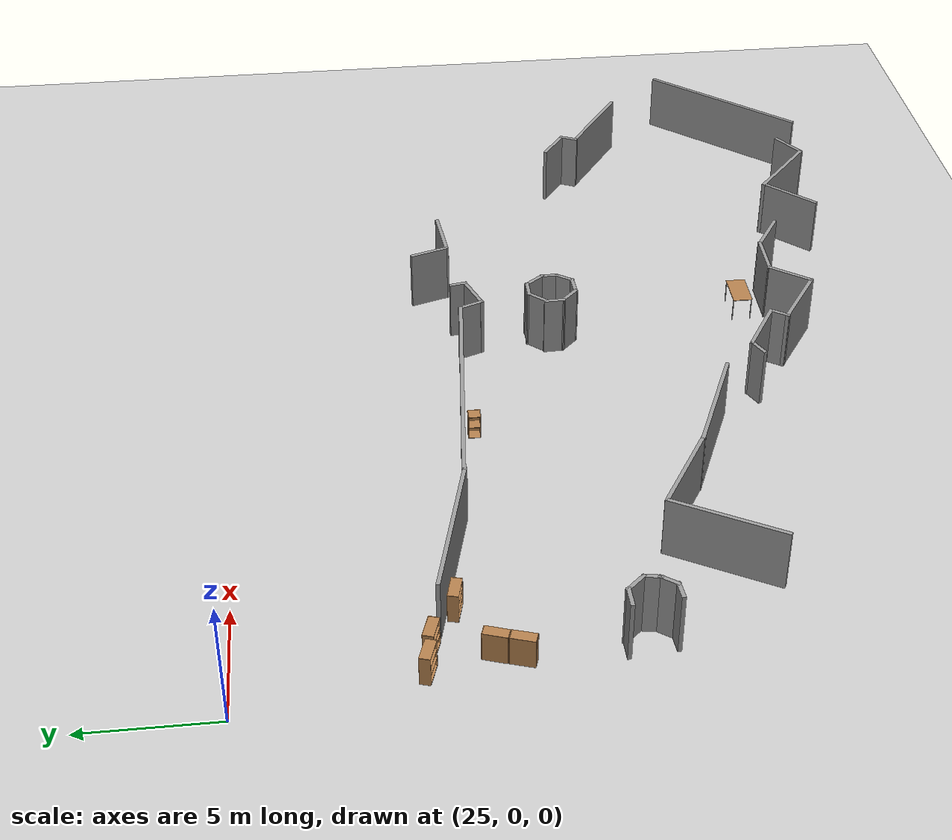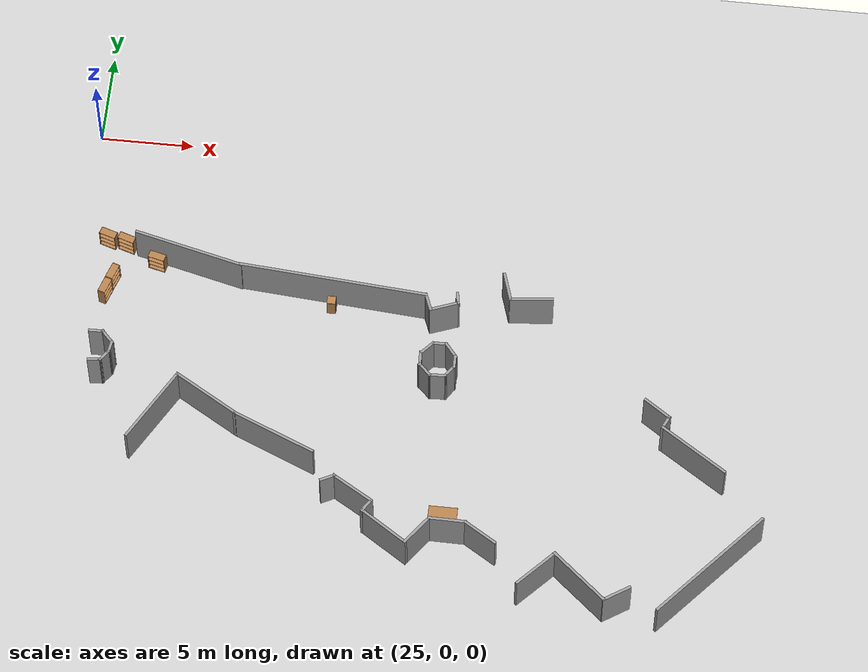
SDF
<sdf version="1.6">
 <world name="default">
  <model name="ground_plane">
   <static>1</static>
   <link name="link">
    <collision name="collision">
     <geometry><plane><normal>0 0 1</normal><size>100 100</size></plane></geometry>
     <surface><friction><ode><mu>100</mu><mu2>50</mu2></ode></friction></surface>
    </collision>
    <visual name="visual">
     <cast_shadows>0</cast_shadows>
     <geometry><plane><normal>0 0 1</normal><size>100 100</size></plane></geometry>
     <material>
      <script><uri>file://media/materials/scripts/gazebo.material</uri><name>Gazebo/Grey</name></script>
     </material>
    </visual>
   </link>
  </model>
  <model name="mall_new_reduce_size">
   <pose>-6.8092 7.5529 0 0 -0 0</pose>
   <link name="Wall_149">
    <collision name="Wall_149_Collision">
     <geometry><box><size>6.0228 0.15 2.5</size></box></geometry>
     <pose>0 0 1.25 0 -0 0</pose>
    </collision>
    <visual name="Wall_149_Visual">
     <pose>0 0 1.25 0 -0 0</pose>
     <geometry><box><size>6.0228 0.15 2.5</size></box></geometry>
     <material>
      <script><uri>file://media/materials/scripts/gazebo.material</uri><name>Gazebo/Grey</name></script>
      <ambient>1 1 1 1</ambient>
     </material>
     <meta><layer>0</layer></meta>
    </visual>
    <pose>37.6627 -15.2721 0 0 -0 -0.24371</pose>
   </link>
   <link name="Wall_150">
    <collision name="Wall_150_Collision">
     <geometry><box><size>10.0902 0.15 2.5</size></box></geometry>
     <pose>0 0 1.25 0 -0 0</pose>
    </collision>
    <visual name="Wall_150_Visual">
     <pose>0 0 1.25 0 -0 0</pose>
     <geometry><box><size>10.0902 0.15 2.5</size></box></geometry>
     <material>
      <script><uri>file://media/materials/scripts/gazebo.material</uri><name>Gazebo/Grey</name></script>
      <ambient>1 1 1 1</ambient>
     </material>
     <meta><layer>0</layer></meta>
    </visual>
    <pose>45.4742 -16.3538 0 0 -0 -0.081987</pose>
   </link>
   <link name="Wall_151">
    <collision name="Wall_151_Collision">
     <geometry><box><size>1.07037 0.15 2.5</size></box></geometry>
     <pose>0 0 1.25 0 -0 0</pose>
    </collision>
    <visual name="Wall_151_Visual">
     <pose>0 0 1.25 0 -0 0</pose>
     <geometry><box><size>1.07037 0.15 2.5</size></box></geometry>
     <material>
      <script><uri>file://media/materials/scripts/gazebo.material</uri><name>Gazebo/Grey</name></script>
      <ambient>1 1 1 1</ambient>
     </material>
     <meta><layer>0</layer></meta>
    </visual>
    <pose>50.5839 -17.1905 0 0 -0 -1.20463</pose>
   </link>
   <link name="Wall_152">
    <collision name="Wall_152_Collision">
     <geometry><box><size>1.64204 0.15 2.5</size></box></geometry>
     <pose>0 0 1.25 0 -0 0</pose>
    </collision>
    <visual name="Wall_152_Visual">
     <pose>0 0 1.25 0 -0 0</pose>
     <geometry><box><size>1.64204 0.15 2.5</size></box></geometry>
     <material>
      <script><uri>file://media/materials/scripts/gazebo.material</uri><name>Gazebo/Grey</name></script>
      <ambient>1 1 1 1</ambient>
     </material>
     <meta><layer>0</layer></meta>
    </visual>
    <pose>51.4454 -17.3621 0 0 -0 0.365329</pose>
   </link>
   <link name="Wall_153">
    <collision name="Wall_153_Collision">
     <geometry><box><size>0.719382 0.15 2.5</size></box></geometry>
     <pose>0 0 1.25 0 -0 0</pose>
    </collision>
    <visual name="Wall_153_Visual">
     <pose>0 0 1.25 0 -0 0</pose>
     <geometry><box><size>0.719382 0.15 2.5</size></box></geometry>
     <material>
      <script><uri>file://media/materials/scripts/gazebo.material</uri><name>Gazebo/Grey</name></script>
      <ambient>1 1 1 1</ambient>
     </material>
     <meta><layer>0</layer></meta>
    </visual>
    <pose>52.104 -16.8147 0 0 -0 1.73536</pose>
   </link>
   <link name="Wall_156">
    <collision name="Wall_156_Collision">
     <geometry><box><size>1.66975 0.15 2.5</size></box></geometry>
     <pose>0 0 1.25 0 -0 0</pose>
    </collision>
    <visual name="Wall_156_Visual">
     <pose>0 0 1.25 0 -0 0</pose>
     <geometry><box><size>1.66975 0.15 2.5</size></box></geometry>
     <material>
      <script><uri>file://media/materials/scripts/gazebo.material</uri><name>Gazebo/Grey</name></script>
      <ambient>1 1 1 1</ambient>
     </material>
     <meta><layer>0</layer></meta>
    </visual>
    <pose>54.6252 -15.8323 0 0 -0 -1.27154</pose>
   </link>
   <link name="Wall_157">
    <collision name="Wall_157_Collision">
     <geometry><box><size>2.34099 0.15 2.5</size></box></geometry>
     <pose>0 0 1.25 0 -0 0</pose>
    </collision>
    <visual name="Wall_157_Visual">
     <pose>0 0 1.25 0 -0 0</pose>
     <geometry><box><size>2.34099 0.15 2.5</size></box></geometry>
     <material>
      <script><uri>file://media/materials/scripts/gazebo.material</uri><name>Gazebo/Grey</name></script>
      <ambient>1 1 1 1</ambient>
     </material>
     <meta><layer>0</layer></meta>
    </visual>
    <pose>55.9396 -16.4609 0 0 -0 0.096908</pose>
   </link>
   <link name="Wall_160">
    <collision name="Wall_160_Collision">
     <geometry><box><size>0.922115 0.15 2.5</size></box></geometry>
     <pose>0 0 1.25 0 -0 0</pose>
    </collision>
    <visual name="Wall_160_Visual">
     <pose>0 0 1.25 0 -0 0</pose>
     <geometry><box><size>0.922115 0.15 2.5</size></box></geometry>
     <material>
      <script><uri>file://media/materials/scripts/gazebo.material</uri><name>Gazebo/Grey</name></script>
      <ambient>1 1 1 1</ambient>
     </material>
     <meta><layer>0</layer></meta>
    </visual>
    <pose>50.8361 -19.9069 0 0 -0 0.843659</pose>
   </link>
   <link name="Wall_161">
    <collision name="Wall_161_Collision">
     <geometry><box><size>0.855974 0.15 2.5</size></box></geometry>
     <pose>0 0 1.25 0 -0 0</pose>
    </collision>
    <visual name="Wall_161_Visual">
     <pose>0 0 1.25 0 -0 0</pose>
     <geometry><box><size>0.855974 0.15 2.5</size></box></geometry>
     <material>
      <script><uri>file://media/materials/scripts/gazebo.material</uri><name>Gazebo/Grey</name></script>
      <ambient>1 1 1 1</ambient>
     </material>
     <meta><layer>0</layer></meta>
    </visual>
    <pose>51.4457 -19.6069 0 0 -0 0.008949</pose>
   </link>
   <link name="Wall_162">
    <collision name="Wall_162_Collision">
     <geometry><box><size>1.02706 0.15 2.5</size></box></geometry>
     <pose>0 0 1.25 0 -0 0</pose>
    </collision>
    <visual name="Wall_162_Visual">
     <pose>0 0 1.25 0 -0 0</pose>
     <geometry><box><size>1.02706 0.15 2.5</size></box></geometry>
     <material>
      <script><uri>file://media/materials/scripts/gazebo.material</uri><name>Gazebo/Grey</name></script>
      <ambient>1 1 1 1</ambient>
     </material>
     <meta><layer>0</layer></meta>
    </visual>
    <pose>52.0627 -19.9472 0 0 -0 -0.900073</pose>
   </link>
   <link name="Wall_163">
    <collision name="Wall_163_Collision">
     <geometry><box><size>0.756321 0.15 2.5</size></box></geometry>
     <pose>0 0 1.25 0 -0 0</pose>
    </collision>
    <visual name="Wall_163_Visual">
     <pose>0 0 1.25 0 -0 0</pose>
     <geometry><box><size>0.756321 0.15 2.5</size></box></geometry>
     <material>
      <script><uri>file://media/materials/scripts/gazebo.material</uri><name>Gazebo/Grey</name></script>
      <ambient>1 1 1 1</ambient>
     </material>
     <meta><layer>0</layer></meta>
    </visual>
    <pose>52.3278 -20.5939 0 0 -0 -1.56745</pose>
   </link>
   <link name="Wall_164">
    <collision name="Wall_164_Collision">
     <geometry><box><size>0.854712 0.15 2.5</size></box></geometry>
     <pose>0 0 1.25 0 -0 0</pose>
    </collision>
    <visual name="Wall_164_Visual">
     <pose>0 0 1.25 0 -0 0</pose>
     <geometry><box><size>0.854712 0.15 2.5</size></box></geometry>
     <material>
      <script><uri>file://media/materials/scripts/gazebo.material</uri><name>Gazebo/Grey</name></script>
      <ambient>1 1 1 1</ambient>
     </material>
     <meta><layer>0</layer></meta>
    </visual>
    <pose>52.1195 -21.1866 0 0 -0 -2.17742</pose>
   </link>
   <link name="Wall_165">
    <collision name="Wall_165_Collision">
     <geometry><box><size>0.950864 0.15 2.5</size></box></geometry>
     <pose>0 0 1.25 0 -0 0</pose>
    </collision>
    <visual name="Wall_165_Visual">
     <pose>0 0 1.25 0 -0 0</pose>
     <geometry><box><size>0.950864 0.15 2.5</size></box></geometry>
     <material>
      <script><uri>file://media/materials/scripts/gazebo.material</uri><name>Gazebo/Grey</name></script>
      <ambient>1 1 1 1</ambient>
     </material>
     <meta><layer>0</layer></meta>
    </visual>
    <pose>51.5271 -21.4943 0 0 -0 -3.09591</pose>
   </link>
   <link name="Wall_166">
    <collision name="Wall_166_Collision">
     <geometry><box><size>0.977095 0.15 2.5</size></box></geometry>
     <pose>0 0 1.25 0 -0 0</pose>
    </collision>
    <visual name="Wall_166_Visual">
     <pose>0 0 1.25 0 -0 0</pose>
     <geometry><box><size>0.977095 0.15 2.5</size></box></geometry>
     <material>
      <script><uri>file://media/materials/scripts/gazebo.material</uri><name>Gazebo/Grey</name></script>
      <ambient>1 1 1 1</ambient>
     </material>
     <meta><layer>0</layer></meta>
    </visual>
    <pose>50.8226 -21.2238 0 0 -0 2.36845</pose>
   </link>
   <link name="Wall_167">
    <collision name="Wall_167_Collision">
     <geometry><box><size>0.862803 0.15 2.5</size></box></geometry>
     <pose>0 0 1.25 0 -0 0</pose>
    </collision>
    <visual name="Wall_167_Visual">
     <pose>0 0 1.25 0 -0 0</pose>
     <geometry><box><size>0.862803 0.15 2.5</size></box></geometry>
     <material>
      <script><uri>file://media/materials/scripts/gazebo.material</uri><name>Gazebo/Grey</name></script>
      <ambient>1 1 1 1</ambient>
     </material>
     <meta><layer>0</layer></meta>
    </visual>
    <pose>50.5217 -20.5788 0 0 -0 1.60849</pose>
   </link>
   <link name="Wall_170">
    <collision name="Wall_170_Collision">
     <geometry><box><size>1.71198 0.15 2.5</size></box></geometry>
     <pose>0 0 1.25 0 -0 0</pose>
    </collision>
    <visual name="Wall_170_Visual">
     <pose>0 0 1.25 0 -0 0</pose>
     <geometry><box><size>1.71198 0.15 2.5</size></box></geometry>
     <material>
      <script><uri>file://media/materials/scripts/gazebo.material</uri><name>Gazebo/Grey</name></script>
      <ambient>1 1 1 1</ambient>
     </material>
     <meta><layer>0</layer></meta>
    </visual>
    <pose>63.0306 -22.2425 0 0 -0 -0.612119</pose>
   </link>
   <link name="Wall_171">
    <collision name="Wall_171_Collision">
     <geometry><box><size>0.839183 0.15 2.5</size></box></geometry>
     <pose>0 0 1.25 0 -0 0</pose>
    </collision>
    <visual name="Wall_171_Visual">
     <pose>0 0 1.25 0 -0 0</pose>
     <geometry><box><size>0.839183 0.15 2.5</size></box></geometry>
     <material>
      <script><uri>file://media/materials/scripts/gazebo.material</uri><name>Gazebo/Grey</name></script>
      <ambient>1 1 1 1</ambient>
     </material>
     <meta><layer>0</layer></meta>
    </visual>
    <pose>63.5354 -23.0042 0 0 -0 -2.00233</pose>
   </link>
   <link name="Wall_172">
    <collision name="Wall_172_Collision">
     <geometry><box><size>4.15243 0.15 2.5</size></box></geometry>
     <pose>0 0 1.25 0 -0 0</pose>
    </collision>
    <visual name="Wall_172_Visual">
     <pose>0 0 1.25 0 -0 0</pose>
     <geometry><box><size>4.15243 0.15 2.5</size></box></geometry>
     <material>
      <script><uri>file://media/materials/scripts/gazebo.material</uri><name>Gazebo/Grey</name></script>
      <ambient>1 1 1 1</ambient>
     </material>
     <meta><layer>0</layer></meta>
    </visual>
    <pose>65.0743 -24.4298 0 0 -0 -0.589468</pose>
   </link>
   <link name="Wall_175">
    <collision name="Wall_175_Collision">
     <geometry><box><size>7.63134 0.15 2.5</size></box></geometry>
     <pose>0 0 1.25 0 -0 0</pose>
    </collision>
    <visual name="Wall_175_Visual">
     <pose>0 0 1.25 0 -0 0</pose>
     <geometry><box><size>7.63134 0.15 2.5</size></box></geometry>
     <material>
      <script><uri>file://media/materials/scripts/gazebo.material</uri><name>Gazebo/Grey</name></script>
      <ambient>1 1 1 1</ambient>
     </material>
     <meta><layer>0</layer></meta>
    </visual>
    <pose>66.4001 -30.8567 0 0 -0 -2.28745</pose>
   </link>
   <link name="Wall_178">
    <collision name="Wall_178_Collision">
     <geometry><box><size>2.71113 0.15 2.5</size></box></geometry>
     <pose>0 0 1.25 0 -0 0</pose>
    </collision>
    <visual name="Wall_178_Visual">
     <pose>0 0 1.25 0 -0 0</pose>
     <geometry><box><size>2.71113 0.15 2.5</size></box></geometry>
     <material>
      <script><uri>file://media/materials/scripts/gazebo.material</uri><name>Gazebo/Grey</name></script>
      <ambient>1 1 1 1</ambient>
     </material>
     <meta><layer>0</layer></meta>
    </visual>
    <pose>57.6342 -32.0142 0 0 -0 0.814065</pose>
   </link>
   <link name="Wall_179">
    <collision name="Wall_179_Collision">
     <geometry><box><size>3.68959 0.15 2.5</size></box></geometry>
     <pose>0 0 1.25 0 -0 0</pose>
    </collision>
    <visual name="Wall_179_Visual">
     <pose>0 0 1.25 0 -0 0</pose>
     <geometry><box><size>3.68959 0.15 2.5</size></box></geometry>
     <material>
      <script><uri>file://media/materials/scripts/gazebo.material</uri><name>Gazebo/Grey</name></script>
      <ambient>1 1 1 1</ambient>
     </material>
     <meta><layer>0</layer></meta>
    </visual>
    <pose>59.8368 -32.2413 0 0 -0 -0.713396</pose>
   </link>
   <link name="Wall_180">
    <collision name="Wall_180_Collision">
     <geometry><box><size>1.63637 0.15 2.5</size></box></geometry>
     <pose>0 0 1.25 0 -0 0</pose>
    </collision>
    <visual name="Wall_180_Visual">
     <pose>0 0 1.25 0 -0 0</pose>
     <geometry><box><size>1.63637 0.15 2.5</size></box></geometry>
     <material>
      <script><uri>file://media/materials/scripts/gazebo.material</uri><name>Gazebo/Grey</name></script>
      <ambient>1 1 1 1</ambient>
     </material>
     <meta><layer>0</layer></meta>
    </visual>
    <pose>61.8128 -33.009 0 0 -0 0.576763</pose>
   </link>
   <link name="Wall_183">
    <collision name="Wall_183_Collision">
     <geometry><box><size>0.858507 0.15 2.5</size></box></geometry>
     <pose>0 0 1.25 0 -0 0</pose>
    </collision>
    <visual name="Wall_183_Visual">
     <pose>0 0 1.25 0 -0 0</pose>
     <geometry><box><size>0.858507 0.15 2.5</size></box></geometry>
     <material>
      <script><uri>file://media/materials/scripts/gazebo.material</uri><name>Gazebo/Grey</name></script>
      <ambient>1 1 1 1</ambient>
     </material>
     <meta><layer>0</layer></meta>
    </visual>
    <pose>46.5261 -28.0243 0 0 -0 0.469325</pose>
   </link>
   <link name="Wall_184">
    <collision name="Wall_184_Collision">
     <geometry><box><size>2.54291 0.15 2.5</size></box></geometry>
     <pose>0 0 1.25 0 -0 0</pose>
    </collision>
    <visual name="Wall_184_Visual">
     <pose>0 0 1.25 0 -0 0</pose>
     <geometry><box><size>2.54291 0.15 2.5</size></box></geometry>
     <material>
      <script><uri>file://media/materials/scripts/gazebo.material</uri><name>Gazebo/Grey</name></script>
      <ambient>1 1 1 1</ambient>
     </material>
     <meta><layer>0</layer></meta>
    </visual>
    <pose>47.867 -28.4664 0 0 -0 -0.541971</pose>
   </link>
   <link name="Wall_185">
    <collision name="Wall_185_Collision">
     <geometry><box><size>0.862335 0.15 2.5</size></box></geometry>
     <pose>0 0 1.25 0 -0 0</pose>
    </collision>
    <visual name="Wall_185_Visual">
     <pose>0 0 1.25 0 -0 0</pose>
     <geometry><box><size>0.862335 0.15 2.5</size></box></geometry>
     <material>
      <script><uri>file://media/materials/scripts/gazebo.material</uri><name>Gazebo/Grey</name></script>
      <ambient>1 1 1 1</ambient>
     </material>
     <meta><layer>0</layer></meta>
    </visual>
    <pose>48.6957 -29.3956 0 0 -0 -2.15451</pose>
   </link>
   <link name="Wall_186">
    <collision name="Wall_186_Collision">
     <geometry><box><size>2.98998 0.15 2.5</size></box></geometry>
     <pose>0 0 1.25 0 -0 0</pose>
    </collision>
    <visual name="Wall_186_Visual">
     <pose>0 0 1.25 0 -0 0</pose>
     <geometry><box><size>2.98998 0.15 2.5</size></box></geometry>
     <material>
      <script><uri>file://media/materials/scripts/gazebo.material</uri><name>Gazebo/Grey</name></script>
      <ambient>1 1 1 1</ambient>
     </material>
     <meta><layer>0</layer></meta>
    </visual>
    <pose>49.6816 -30.4646 0 0 -0 -0.587145</pose>
   </link>
   <link name="Wall_187">
    <collision name="Wall_187_Collision">
     <geometry><box><size>1.97307 0.15 2.5</size></box></geometry>
     <pose>0 0 1.25 0 -0 0</pose>
    </collision>
    <visual name="Wall_187_Visual">
     <pose>0 0 1.25 0 -0 0</pose>
     <geometry><box><size>1.97307 0.15 2.5</size></box></geometry>
     <material>
      <script><uri>file://media/materials/scripts/gazebo.material</uri><name>Gazebo/Grey</name></script>
      <ambient>1 1 1 1</ambient>
     </material>
     <meta><layer>0</layer></meta>
    </visual>
    <pose>51.4004 -30.4996 0 0 -0 0.941346</pose>
   </link>
   <link name="Wall_188">
    <collision name="Wall_188_Collision">
     <geometry><box><size>2.01359 0.15 2.5</size></box></geometry>
     <pose>0 0 1.25 0 -0 0</pose>
    </collision>
    <visual name="Wall_188_Visual">
     <pose>0 0 1.25 0 -0 0</pose>
     <geometry><box><size>2.01359 0.15 2.5</size></box></geometry>
     <material>
      <script><uri>file://media/materials/scripts/gazebo.material</uri><name>Gazebo/Grey</name></script>
      <ambient>1 1 1 1</ambient>
     </material>
     <meta><layer>0</layer></meta>
    </visual>
    <pose>52.8836 -29.7761 0 0 -0 -0.014355</pose>
   </link>
   <link name="Wall_189">
    <collision name="Wall_189_Collision">
     <geometry><box><size>2.02693 0.15 2.5</size></box></geometry>
     <pose>0 0 1.25 0 -0 0</pose>
    </collision>
    <visual name="Wall_189_Visual">
     <pose>0 0 1.25 0 -0 0</pose>
     <geometry><box><size>2.02693 0.15 2.5</size></box></geometry>
     <material>
      <script><uri>file://media/materials/scripts/gazebo.material</uri><name>Gazebo/Grey</name></script>
      <ambient>1 1 1 1</ambient>
     </material>
     <meta><layer>0</layer></meta>
    </visual>
    <pose>54.6104 -30.3028 0 0 -0 -0.560016</pose>
   </link>
   <link name="Wall_192">
    <collision name="Wall_192_Collision">
     <geometry><box><size>0.832832 0.15 2.5</size></box></geometry>
     <pose>0 0 1.25 0 -0 0</pose>
    </collision>
    <visual name="Wall_192_Visual">
     <pose>0 0 1.25 0 -0 0</pose>
     <geometry><box><size>0.832832 0.15 2.5</size></box></geometry>
     <material>
      <script><uri>file://media/materials/scripts/gazebo.material</uri><name>Gazebo/Grey</name></script>
      <ambient>1 1 1 1</ambient>
     </material>
     <meta><layer>0</layer></meta>
    </visual>
    <pose>33.5298 -20.7354 0 0 -0 0.01145</pose>
   </link>
   <link name="Wall_193">
    <collision name="Wall_193_Collision">
     <geometry><box><size>0.969314 0.15 2.5</size></box></geometry>
     <pose>0 0 1.25 0 -0 0</pose>
    </collision>
    <visual name="Wall_193_Visual">
     <pose>0 0 1.25 0 -0 0</pose>
     <geometry><box><size>0.969314 0.15 2.5</size></box></geometry>
     <material>
      <script><uri>file://media/materials/scripts/gazebo.material</uri><name>Gazebo/Grey</name></script>
      <ambient>1 1 1 1</ambient>
     </material>
     <meta><layer>0</layer></meta>
    </visual>
    <pose>34.1496 -21.0246 0 0 -0 -0.82359</pose>
   </link>
   <link name="Wall_194">
    <collision name="Wall_194_Collision">
     <geometry><box><size>0.727807 0.15 2.5</size></box></geometry>
     <pose>0 0 1.25 0 -0 0</pose>
    </collision>
    <visual name="Wall_194_Visual">
     <pose>0 0 1.25 0 -0 0</pose>
     <geometry><box><size>0.727807 0.15 2.5</size></box></geometry>
     <material>
      <script><uri>file://media/materials/scripts/gazebo.material</uri><name>Gazebo/Grey</name></script>
      <ambient>1 1 1 1</ambient>
     </material>
     <meta><layer>0</layer></meta>
    </visual>
    <pose>34.3875 -21.61 0 0 -0 -1.73747</pose>
   </link>
   <link name="Wall_195">
    <collision name="Wall_195_Collision">
     <geometry><box><size>0.794161 0.15 2.5</size></box></geometry>
     <pose>0 0 1.25 0 -0 0</pose>
    </collision>
    <visual name="Wall_195_Visual">
     <pose>0 0 1.25 0 -0 0</pose>
     <geometry><box><size>0.794161 0.15 2.5</size></box></geometry>
     <material>
      <script><uri>file://media/materials/scripts/gazebo.material</uri><name>Gazebo/Grey</name></script>
      <ambient>1 1 1 1</ambient>
     </material>
     <meta><layer>0</layer></meta>
    </visual>
    <pose>34.1495 -22.1476 0 0 -0 -2.20179</pose>
   </link>
   <link name="Wall_196">
    <collision name="Wall_196_Collision">
     <geometry><box><size>0.759563 0.15 2.5</size></box></geometry>
     <pose>0 0 1.25 0 -0 0</pose>
    </collision>
    <visual name="Wall_196_Visual">
     <pose>0 0 1.25 0 -0 0</pose>
     <geometry><box><size>0.759563 0.15 2.5</size></box></geometry>
     <material>
      <script><uri>file://media/materials/scripts/gazebo.material</uri><name>Gazebo/Grey</name></script>
      <ambient>1 1 1 1</ambient>
     </material>
     <meta><layer>0</layer></meta>
    </visual>
    <pose>33.6632 -22.4335 0 0 -0 -3.05681</pose>
   </link>
   <link name="Wall_202">
    <collision name="Wall_202_Collision">
     <geometry><box><size>4.76377 0.15 2.5</size></box></geometry>
     <pose>0 0 1.25 0 -0 0</pose>
    </collision>
    <visual name="Wall_202_Visual">
     <pose>0 0 1.25 0 -0 0</pose>
     <geometry><box><size>4.76377 0.15 2.5</size></box></geometry>
     <material>
      <script><uri>file://media/materials/scripts/gazebo.material</uri><name>Gazebo/Grey</name></script>
      <ambient>1 1 1 1</ambient>
     </material>
     <meta><layer>0</layer></meta>
    </visual>
    <pose>43.4434 -25.6711 0 0 -0 2.74033</pose>
   </link>
   <link name="Wall_203">
    <collision name="Wall_203_Collision">
     <geometry><box><size>3.92628 0.15 2.5</size></box></geometry>
     <pose>0 0 1.25 0 -0 0</pose>
    </collision>
    <visual name="Wall_203_Visual">
     <pose>0 0 1.25 0 -0 0</pose>
     <geometry><box><size>3.92628 0.15 2.5</size></box></geometry>
     <material>
      <script><uri>file://media/materials/scripts/gazebo.material</uri><name>Gazebo/Grey</name></script>
      <ambient>1 1 1 1</ambient>
     </material>
     <meta><layer>0</layer></meta>
    </visual>
    <pose>39.7148 -23.7993 0 0 -0 2.6016</pose>
   </link>
   <link name="Wall_204">
    <collision name="Wall_204_Collision">
     <geometry><box><size>4.53256 0.15 2.5</size></box></geometry>
     <pose>0 0 1.25 0 -0 0</pose>
    </collision>
    <visual name="Wall_204_Visual">
     <pose>0 0 1.25 0 -0 0</pose>
     <geometry><box><size>4.53256 0.15 2.5</size></box></geometry>
     <material>
      <script><uri>file://media/materials/scripts/gazebo.material</uri><name>Gazebo/Grey</name></script>
      <ambient>1 1 1 1</ambient>
     </material>
     <meta><layer>0</layer></meta>
    </visual>
    <pose>37.0041 -24.7371 0 0 -0 -2.08443</pose>
   </link>
   <static>1</static>
  </model>
  <model name="RoboCup SPL Ball">
   <static>0</static>
   <link name="ball">
    <inertial>
     <mass>0.0056</mass>
     <inertia>
      <ixx>2.37e-06</ixx>
      <iyy>2.37e-06</iyy>
      <izz>2.37e-06</izz>
      <ixy>0</ixy>
      <ixz>0</ixz>
      <iyz>0</iyz>
     </inertia>
    </inertial>
    <collision name="collision"><geometry><sphere><radius>1.76296e-09</radius></sphere></geometry></collision>
    <visual name="visual">
     <geometry><sphere><radius>1.76296e-09</radius></sphere></geometry>
     <material>
      <script><uri>file://media/materials/scripts/gazebo.material</uri><name>Gazebo/RedBright</name></script>
     </material>
    </visual>
   </link>
   <pose>54.9611 -9.71637 2e-06 0 -0 0</pose>
  </model>
  <model name="bookshelf_14">
   <static>1</static>
   <link name="link">
    <inertial><mass>1</mass></inertial>
    <collision name="back">
     <pose>0 0.005 0.6 0 -0 0</pose>
     <geometry><box><size>0.9 0.01 1.2</size></box></geometry>
    </collision>
    <visual name="visual1">
     <pose>0 0.005 0.6 0 -0 0</pose>
     <geometry><box><size>0.9 0.01 1.2</size></box></geometry>
     <material>
      <script><uri>file://media/materials/scripts/gazebo.material</uri><name>Gazebo/Wood</name></script>
     </material>
    </visual>
    <collision name="left_side">
     <pose>0.45 -0.195 0.6 0 -0 0</pose>
     <geometry><box><size>0.02 0.4 1.2</size></box></geometry>
    </collision>
    <visual name="visual2">
     <pose>0.45 -0.195 0.6 0 -0 0</pose>
     <geometry><box><size>0.02 0.4 1.2</size></box></geometry>
     <material>
      <script><uri>file://media/materials/scripts/gazebo.material</uri><name>Gazebo/Wood</name></script>
     </material>
    </visual>
    <collision name="right_side">
     <pose>-0.45 -0.195 0.6 0 -0 0</pose>
     <geometry><box><size>0.02 0.4 1.2</size></box></geometry>
    </collision>
    <visual name="visual3">
     <pose>-0.45 -0.195 0.6 0 -0 0</pose>
     <geometry><box><size>0.02 0.4 1.2</size></box></geometry>
     <material>
      <script><uri>file://media/materials/scripts/gazebo.material</uri><name>Gazebo/Wood</name></script>
     </material>
    </visual>
    <collision name="bottom">
     <pose>0 -0.195 0.03 0 -0 0</pose>
     <geometry><box><size>0.88 0.4 0.06</size></box></geometry>
    </collision>
    <visual name="visual4">
     <pose>0 -0.195 0.03 0 -0 0</pose>
     <geometry><box><size>0.88 0.4 0.06</size></box></geometry>
     <material>
      <script><uri>file://media/materials/scripts/gazebo.material</uri><name>Gazebo/Wood</name></script>
     </material>
    </visual>
    <collision name="top">
     <pose>0 -0.195 1.19 0 -0 0</pose>
     <geometry><box><size>0.88 0.4 0.02</size></box></geometry>
    </collision>
    <visual name="visual5">
     <pose>0 -0.195 1.19 0 -0 0</pose>
     <geometry><box><size>0.88 0.4 0.02</size></box></geometry>
     <material>
      <script><uri>file://media/materials/scripts/gazebo.material</uri><name>Gazebo/Wood</name></script>
     </material>
    </visual>
    <collision name="low_shelf">
     <pose>0 -0.195 0.43 0 -0 0</pose>
     <geometry><box><size>0.88 0.4 0.02</size></box></geometry>
    </collision>
    <visual name="visual6">
     <pose>0 -0.195 0.43 0 -0 0</pose>
     <geometry><box><size>0.88 0.4 0.02</size></box></geometry>
     <material>
      <script><uri>file://media/materials/scripts/gazebo.material</uri><name>Gazebo/Wood</name></script>
     </material>
    </visual>
    <collision name="high_shelf">
     <pose>0 -0.195 0.8 0 -0 0</pose>
     <geometry><box><size>0.88 0.4 0.02</size></box></geometry>
    </collision>
    <visual name="visual7">
     <pose>0 -0.195 0.8 0 -0 0</pose>
     <geometry><box><size>0.88 0.4 0.02</size></box></geometry>
     <material>
      <script><uri>file://media/materials/scripts/gazebo.material</uri><name>Gazebo/Wood</name></script>
     </material>
    </visual>
   </link>
   <pose>29.1504 -7.45261 0 0 0 -0.246221</pose>
  </model>
  <model name="cabinet_1">
   <static>1</static>
   <link name="cabinet_bottom_plate">
    <inertial>
     <pose>0 0 -1 0 -0 0</pose>
     <inertia><ixx>2.05</ixx><ixy>0</ixy><ixz>0</ixz><iyy>2.05</iyy><iyz>0</iyz><izz>2.05</izz></inertia>
     <mass>25</mass>
    </inertial>
    <collision name="cabinet_bottom_plate_geom">
     <pose>0 0 0.01 0 -0 0</pose>
     <geometry><box><size>0.45 0.45 0.02</size></box></geometry>
    </collision>
    <visual name="cabinet_bottom_plate_geom_visual">
     <pose>0 0 0.01 0 -0 0</pose>
     <geometry><box><size>0.45 0.45 0.02</size></box></geometry>
     <material>
      <script><uri>file://media/materials/scripts/gazebo.material</uri><name>Gazebo/Wood</name></script>
     </material>
    </visual>
    <collision name="cabinet_bottom_plate_geom_cabinet_back_plate">
     <pose>0.235 0 0.51 0 -0 0</pose>
     <geometry><box><size>0.02 0.45 1.02</size></box></geometry>
    </collision>
    <visual name="cabinet_bottom_plate_geom_cabinet_back_plate_visual">
     <pose>0.235 0 0.51 0 -0 0</pose>
     <geometry><box><size>0.02 0.45 1.02</size></box></geometry>
     <material>
      <script><uri>file://media/materials/scripts/gazebo.material</uri><name>Gazebo/Wood</name></script>
     </material>
    </visual>
    <collision name="cabinet_bottom_plate_geom_cabinet_left_plate">
     <pose>0 0.235 0.51 0 -0 0</pose>
     <geometry><box><size>0.45 0.02 1.02</size></box></geometry>
    </collision>
    <visual name="cabinet_bottom_plate_geom_cabinet_left_plate_visual">
     <pose>0 0.235 0.51 0 -0 0</pose>
     <geometry><box><size>0.45 0.02 1.02</size></box></geometry>
     <material>
      <script><uri>file://media/materials/scripts/gazebo.material</uri><name>Gazebo/Wood</name></script>
     </material>
    </visual>
    <collision name="cabinet_bottom_plate_geom_cabinet_middle_plate">
     <pose>0 0 0.51 0 -0 0</pose>
     <geometry><box><size>0.45 0.45 0.02</size></box></geometry>
    </collision>
    <visual name="cabinet_bottom_plate_geom_cabinet_middle_plate_visual">
     <pose>0 0 0.51 0 -0 0</pose>
     <geometry><box><size>0.45 0.45 0.02</size></box></geometry>
     <material>
      <script><uri>file://media/materials/scripts/gazebo.material</uri><name>Gazebo/Wood</name></script>
     </material>
    </visual>
    <collision name="cabinet_bottom_plate_geom_cabinet_right_plate">
     <pose>0 -0.235 0.51 0 -0 0</pose>
     <geometry><box><size>0.45 0.02 1.02</size></box></geometry>
    </collision>
    <visual name="cabinet_bottom_plate_geom_cabinet_right_plate_visual">
     <pose>0 -0.235 0.51 0 -0 0</pose>
     <geometry><box><size>0.45 0.02 1.02</size></box></geometry>
     <material>
      <script><uri>file://media/materials/scripts/gazebo.material</uri><name>Gazebo/Wood</name></script>
     </material>
    </visual>
    <collision name="cabinet_bottom_plate_geom_cabinet_top_plate">
     <pose>0 0 1.01 0 -0 0</pose>
     <geometry><box><size>0.45 0.45 0.02</size></box></geometry>
    </collision>
    <visual name="cabinet_bottom_plate_geom_cabinet_top_plate_visual">
     <pose>0 0 1.01 0 -0 0</pose>
     <geometry><box><size>0.45 0.45 0.02</size></box></geometry>
     <material>
      <script><uri>file://media/materials/scripts/gazebo.material</uri><name>Gazebo/Wood</name></script>
     </material>
    </visual>
   </link>
   <pose>38.5963 -9.24178 0 0 -0 0</pose>
  </model>
  <model name="table_1">
   <static>1</static>
   <link name="link">
    <collision name="surface">
     <pose>0 0 1 0 -0 0</pose>
     <geometry><box><size>1.5 0.8 0.03</size></box></geometry>
     <surface><friction><ode><mu>0.6</mu><mu2>0.6</mu2></ode></friction></surface>
    </collision>
    <visual name="visual1">
     <pose>0 0 1 0 -0 0</pose>
     <geometry><box><size>1.5 0.8 0.03</size></box></geometry>
     <material>
      <script><uri>file://media/materials/scripts/gazebo.material</uri><name>Gazebo/Wood</name></script>
     </material>
    </visual>
    <collision name="front_left_leg">
     <pose>0.68 0.38 0.5 0 -0 0</pose>
     <geometry><cylinder><radius>0.02</radius><length>1</length></cylinder></geometry>
    </collision>
    <visual name="front_left_leg">
     <pose>0.68 0.38 0.5 0 -0 0</pose>
     <geometry><cylinder><radius>0.02</radius><length>1</length></cylinder></geometry>
     <material>
      <script><uri>file://media/materials/scripts/gazebo.material</uri><name>Gazebo/Grey</name></script>
     </material>
    </visual>
    <collision name="front_right_leg">
     <pose>0.68 -0.38 0.5 0 -0 0</pose>
     <geometry><cylinder><radius>0.02</radius><length>1</length></cylinder></geometry>
    </collision>
    <visual name="front_right_leg">
     <pose>0.68 -0.38 0.5 0 -0 0</pose>
     <geometry><cylinder><radius>0.02</radius><length>1</length></cylinder></geometry>
     <material>
      <script><uri>file://media/materials/scripts/gazebo.material</uri><name>Gazebo/Grey</name></script>
     </material>
    </visual>
    <collision name="back_right_leg">
     <pose>-0.68 -0.38 0.5 0 -0 0</pose>
     <geometry><cylinder><radius>0.02</radius><length>1</length></cylinder></geometry>
    </collision>
    <visual name="back_right_leg">
     <pose>-0.68 -0.38 0.5 0 -0 0</pose>
     <geometry><cylinder><radius>0.02</radius><length>1</length></cylinder></geometry>
     <material>
      <script><uri>file://media/materials/scripts/gazebo.material</uri><name>Gazebo/Grey</name></script>
     </material>
    </visual>
    <collision name="back_left_leg">
     <pose>-0.68 0.38 0.5 0 -0 0</pose>
     <geometry><cylinder><radius>0.02</radius><length>1</length></cylinder></geometry>
    </collision>
    <visual name="back_left_leg">
     <pose>-0.68 0.38 0.5 0 -0 0</pose>
     <geometry><cylinder><radius>0.02</radius><length>1</length></cylinder></geometry>
     <material>
      <script><uri>file://media/materials/scripts/gazebo.material</uri><name>Gazebo/Grey</name></script>
     </material>
    </visual>
   </link>
   <pose>45.7357 -21.1786 0 0 -0 0</pose>
  </model>
  <model name="bookshelf_23">
   <static>1</static>
   <link name="link">
    <inertial><mass>1</mass></inertial>
    <collision name="back">
     <pose>0 0.005 0.6 0 -0 0</pose>
     <geometry><box><size>0.9 0.01 1.2</size></box></geometry>
    </collision>
    <visual name="visual1">
     <pose>0 0.005 0.6 0 -0 0</pose>
     <geometry><box><size>0.9 0.01 1.2</size></box></geometry>
     <material>
      <script><uri>file://media/materials/scripts/gazebo.material</uri><name>Gazebo/Wood</name></script>
     </material>
    </visual>
    <collision name="left_side">
     <pose>0.45 -0.195 0.6 0 -0 0</pose>
     <geometry><box><size>0.02 0.4 1.2</size></box></geometry>
    </collision>
    <visual name="visual2">
     <pose>0.45 -0.195 0.6 0 -0 0</pose>
     <geometry><box><size>0.02 0.4 1.2</size></box></geometry>
     <material>
      <script><uri>file://media/materials/scripts/gazebo.material</uri><name>Gazebo/Wood</name></script>
     </material>
    </visual>
    <collision name="right_side">
     <pose>-0.45 -0.195 0.6 0 -0 0</pose>
     <geometry><box><size>0.02 0.4 1.2</size></box></geometry>
    </collision>
    <visual name="visual3">
     <pose>-0.45 -0.195 0.6 0 -0 0</pose>
     <geometry><box><size>0.02 0.4 1.2</size></box></geometry>
     <material>
      <script><uri>file://media/materials/scripts/gazebo.material</uri><name>Gazebo/Wood</name></script>
     </material>
    </visual>
    <collision name="bottom">
     <pose>0 -0.195 0.03 0 -0 0</pose>
     <geometry><box><size>0.88 0.4 0.06</size></box></geometry>
    </collision>
    <visual name="visual4">
     <pose>0 -0.195 0.03 0 -0 0</pose>
     <geometry><box><size>0.88 0.4 0.06</size></box></geometry>
     <material>
      <script><uri>file://media/materials/scripts/gazebo.material</uri><name>Gazebo/Wood</name></script>
     </material>
    </visual>
    <collision name="top">
     <pose>0 -0.195 1.19 0 -0 0</pose>
     <geometry><box><size>0.88 0.4 0.02</size></box></geometry>
    </collision>
    <visual name="visual5">
     <pose>0 -0.195 1.19 0 -0 0</pose>
     <geometry><box><size>0.88 0.4 0.02</size></box></geometry>
     <material>
      <script><uri>file://media/materials/scripts/gazebo.material</uri><name>Gazebo/Wood</name></script>
     </material>
    </visual>
    <collision name="low_shelf">
     <pose>0 -0.195 0.43 0 -0 0</pose>
     <geometry><box><size>0.88 0.4 0.02</size></box></geometry>
    </collision>
    <visual name="visual6">
     <pose>0 -0.195 0.43 0 -0 0</pose>
     <geometry><box><size>0.88 0.4 0.02</size></box></geometry>
     <material>
      <script><uri>file://media/materials/scripts/gazebo.material</uri><name>Gazebo/Wood</name></script>
     </material>
    </visual>
    <collision name="high_shelf">
     <pose>0 -0.195 0.8 0 -0 0</pose>
     <geometry><box><size>0.88 0.4 0.02</size></box></geometry>
    </collision>
    <visual name="visual7">
     <pose>0 -0.195 0.8 0 -0 0</pose>
     <geometry><box><size>0.88 0.4 0.02</size></box></geometry>
     <material>
      <script><uri>file://media/materials/scripts/gazebo.material</uri><name>Gazebo/Wood</name></script>
     </material>
    </visual>
   </link>
   <pose>26.4103 -9.62883 0 0 -0 1.25956</pose>
  </model>
  <model name="bookshelf_24">
   <static>1</static>
   <link name="link">
    <inertial><mass>1</mass></inertial>
    <collision name="back">
     <pose>0 0.005 0.6 0 -0 0</pose>
     <geometry><box><size>0.9 0.01 1.2</size></box></geometry>
    </collision>
    <visual name="visual1">
     <pose>0 0.005 0.6 0 -0 0</pose>
     <geometry><box><size>0.9 0.01 1.2</size></box></geometry>
     <material>
      <script><uri>file://media/materials/scripts/gazebo.material</uri><name>Gazebo/Wood</name></script>
     </material>
    </visual>
    <collision name="left_side">
     <pose>0.45 -0.195 0.6 0 -0 0</pose>
     <geometry><box><size>0.02 0.4 1.2</size></box></geometry>
    </collision>
    <visual name="visual2">
     <pose>0.45 -0.195 0.6 0 -0 0</pose>
     <geometry><box><size>0.02 0.4 1.2</size></box></geometry>
     <material>
      <script><uri>file://media/materials/scripts/gazebo.material</uri><name>Gazebo/Wood</name></script>
     </material>
    </visual>
    <collision name="right_side">
     <pose>-0.45 -0.195 0.6 0 -0 0</pose>
     <geometry><box><size>0.02 0.4 1.2</size></box></geometry>
    </collision>
    <visual name="visual3">
     <pose>-0.45 -0.195 0.6 0 -0 0</pose>
     <geometry><box><size>0.02 0.4 1.2</size></box></geometry>
     <material>
      <script><uri>file://media/materials/scripts/gazebo.material</uri><name>Gazebo/Wood</name></script>
     </material>
    </visual>
    <collision name="bottom">
     <pose>0 -0.195 0.03 0 -0 0</pose>
     <geometry><box><size>0.88 0.4 0.06</size></box></geometry>
    </collision>
    <visual name="visual4">
     <pose>0 -0.195 0.03 0 -0 0</pose>
     <geometry><box><size>0.88 0.4 0.06</size></box></geometry>
     <material>
      <script><uri>file://media/materials/scripts/gazebo.material</uri><name>Gazebo/Wood</name></script>
     </material>
    </visual>
    <collision name="top">
     <pose>0 -0.195 1.19 0 -0 0</pose>
     <geometry><box><size>0.88 0.4 0.02</size></box></geometry>
    </collision>
    <visual name="visual5">
     <pose>0 -0.195 1.19 0 -0 0</pose>
     <geometry><box><size>0.88 0.4 0.02</size></box></geometry>
     <material>
      <script><uri>file://media/materials/scripts/gazebo.material</uri><name>Gazebo/Wood</name></script>
     </material>
    </visual>
    <collision name="low_shelf">
     <pose>0 -0.195 0.43 0 -0 0</pose>
     <geometry><box><size>0.88 0.4 0.02</size></box></geometry>
    </collision>
    <visual name="visual6">
     <pose>0 -0.195 0.43 0 -0 0</pose>
     <geometry><box><size>0.88 0.4 0.02</size></box></geometry>
     <material>
      <script><uri>file://media/materials/scripts/gazebo.material</uri><name>Gazebo/Wood</name></script>
     </material>
    </visual>
    <collision name="high_shelf">
     <pose>0 -0.195 0.8 0 -0 0</pose>
     <geometry><box><size>0.88 0.4 0.02</size></box></geometry>
    </collision>
    <visual name="visual7">
     <pose>0 -0.195 0.8 0 -0 0</pose>
     <geometry><box><size>0.88 0.4 0.02</size></box></geometry>
     <material>
      <script><uri>file://media/materials/scripts/gazebo.material</uri><name>Gazebo/Wood</name></script>
     </material>
    </visual>
   </link>
   <pose>26.6946 -8.73961 0 0 -0 1.24084</pose>
  </model>
  <model name="bookshelf_25">
   <static>1</static>
   <link name="link">
    <inertial><mass>1</mass></inertial>
    <collision name="back">
     <pose>0 0.005 0.6 0 -0 0</pose>
     <geometry><box><size>0.9 0.01 1.2</size></box></geometry>
    </collision>
    <visual name="visual1">
     <pose>0 0.005 0.6 0 -0 0</pose>
     <geometry><box><size>0.9 0.01 1.2</size></box></geometry>
     <material>
      <script><uri>file://media/materials/scripts/gazebo.material</uri><name>Gazebo/Wood</name></script>
     </material>
    </visual>
    <collision name="left_side">
     <pose>0.45 -0.195 0.6 0 -0 0</pose>
     <geometry><box><size>0.02 0.4 1.2</size></box></geometry>
    </collision>
    <visual name="visual2">
     <pose>0.45 -0.195 0.6 0 -0 0</pose>
     <geometry><box><size>0.02 0.4 1.2</size></box></geometry>
     <material>
      <script><uri>file://media/materials/scripts/gazebo.material</uri><name>Gazebo/Wood</name></script>
     </material>
    </visual>
    <collision name="right_side">
     <pose>-0.45 -0.195 0.6 0 -0 0</pose>
     <geometry><box><size>0.02 0.4 1.2</size></box></geometry>
    </collision>
    <visual name="visual3">
     <pose>-0.45 -0.195 0.6 0 -0 0</pose>
     <geometry><box><size>0.02 0.4 1.2</size></box></geometry>
     <material>
      <script><uri>file://media/materials/scripts/gazebo.material</uri><name>Gazebo/Wood</name></script>
     </material>
    </visual>
    <collision name="bottom">
     <pose>0 -0.195 0.03 0 -0 0</pose>
     <geometry><box><size>0.88 0.4 0.06</size></box></geometry>
    </collision>
    <visual name="visual4">
     <pose>0 -0.195 0.03 0 -0 0</pose>
     <geometry><box><size>0.88 0.4 0.06</size></box></geometry>
     <material>
      <script><uri>file://media/materials/scripts/gazebo.material</uri><name>Gazebo/Wood</name></script>
     </material>
    </visual>
    <collision name="top">
     <pose>0 -0.195 1.19 0 -0 0</pose>
     <geometry><box><size>0.88 0.4 0.02</size></box></geometry>
    </collision>
    <visual name="visual5">
     <pose>0 -0.195 1.19 0 -0 0</pose>
     <geometry><box><size>0.88 0.4 0.02</size></box></geometry>
     <material>
      <script><uri>file://media/materials/scripts/gazebo.material</uri><name>Gazebo/Wood</name></script>
     </material>
    </visual>
    <collision name="low_shelf">
     <pose>0 -0.195 0.43 0 -0 0</pose>
     <geometry><box><size>0.88 0.4 0.02</size></box></geometry>
    </collision>
    <visual name="visual6">
     <pose>0 -0.195 0.43 0 -0 0</pose>
     <geometry><box><size>0.88 0.4 0.02</size></box></geometry>
     <material>
      <script><uri>file://media/materials/scripts/gazebo.material</uri><name>Gazebo/Wood</name></script>
     </material>
    </visual>
    <collision name="high_shelf">
     <pose>0 -0.195 0.8 0 -0 0</pose>
     <geometry><box><size>0.88 0.4 0.02</size></box></geometry>
    </collision>
    <visual name="visual7">
     <pose>0 -0.195 0.8 0 -0 0</pose>
     <geometry><box><size>0.88 0.4 0.02</size></box></geometry>
     <material>
      <script><uri>file://media/materials/scripts/gazebo.material</uri><name>Gazebo/Wood</name></script>
     </material>
    </visual>
   </link>
   <pose>27.4102 -6.50939 0 0 0 -0.312989</pose>
  </model>
  <model name="bookshelf_26">
   <static>1</static>
   <link name="link">
    <inertial><mass>1</mass></inertial>
    <collision name="back">
     <pose>0 0.005 0.6 0 -0 0</pose>
     <geometry><box><size>0.9 0.01 1.2</size></box></geometry>
    </collision>
    <visual name="visual1">
     <pose>0 0.005 0.6 0 -0 0</pose>
     <geometry><box><size>0.9 0.01 1.2</size></box></geometry>
     <material>
      <script><uri>file://media/materials/scripts/gazebo.material</uri><name>Gazebo/Wood</name></script>
     </material>
    </visual>
    <collision name="left_side">
     <pose>0.45 -0.195 0.6 0 -0 0</pose>
     <geometry><box><size>0.02 0.4 1.2</size></box></geometry>
    </collision>
    <visual name="visual2">
     <pose>0.45 -0.195 0.6 0 -0 0</pose>
     <geometry><box><size>0.02 0.4 1.2</size></box></geometry>
     <material>
      <script><uri>file://media/materials/scripts/gazebo.material</uri><name>Gazebo/Wood</name></script>
     </material>
    </visual>
    <collision name="right_side">
     <pose>-0.45 -0.195 0.6 0 -0 0</pose>
     <geometry><box><size>0.02 0.4 1.2</size></box></geometry>
    </collision>
    <visual name="visual3">
     <pose>-0.45 -0.195 0.6 0 -0 0</pose>
     <geometry><box><size>0.02 0.4 1.2</size></box></geometry>
     <material>
      <script><uri>file://media/materials/scripts/gazebo.material</uri><name>Gazebo/Wood</name></script>
     </material>
    </visual>
    <collision name="bottom">
     <pose>0 -0.195 0.03 0 -0 0</pose>
     <geometry><box><size>0.88 0.4 0.06</size></box></geometry>
    </collision>
    <visual name="visual4">
     <pose>0 -0.195 0.03 0 -0 0</pose>
     <geometry><box><size>0.88 0.4 0.06</size></box></geometry>
     <material>
      <script><uri>file://media/materials/scripts/gazebo.material</uri><name>Gazebo/Wood</name></script>
     </material>
    </visual>
    <collision name="top">
     <pose>0 -0.195 1.19 0 -0 0</pose>
     <geometry><box><size>0.88 0.4 0.02</size></box></geometry>
    </collision>
    <visual name="visual5">
     <pose>0 -0.195 1.19 0 -0 0</pose>
     <geometry><box><size>0.88 0.4 0.02</size></box></geometry>
     <material>
      <script><uri>file://media/materials/scripts/gazebo.material</uri><name>Gazebo/Wood</name></script>
     </material>
    </visual>
    <collision name="low_shelf">
     <pose>0 -0.195 0.43 0 -0 0</pose>
     <geometry><box><size>0.88 0.4 0.02</size></box></geometry>
    </collision>
    <visual name="visual6">
     <pose>0 -0.195 0.43 0 -0 0</pose>
     <geometry><box><size>0.88 0.4 0.02</size></box></geometry>
     <material>
      <script><uri>file://media/materials/scripts/gazebo.material</uri><name>Gazebo/Wood</name></script>
     </material>
    </visual>
    <collision name="high_shelf">
     <pose>0 -0.195 0.8 0 -0 0</pose>
     <geometry><box><size>0.88 0.4 0.02</size></box></geometry>
    </collision>
    <visual name="visual7">
     <pose>0 -0.195 0.8 0 -0 0</pose>
     <geometry><box><size>0.88 0.4 0.02</size></box></geometry>
     <material>
      <script><uri>file://media/materials/scripts/gazebo.material</uri><name>Gazebo/Wood</name></script>
     </material>
    </visual>
   </link>
   <pose>26.3998 -6.32523 0 0 0 -0.314634</pose>
  </model>
 </world>
</sdf>
